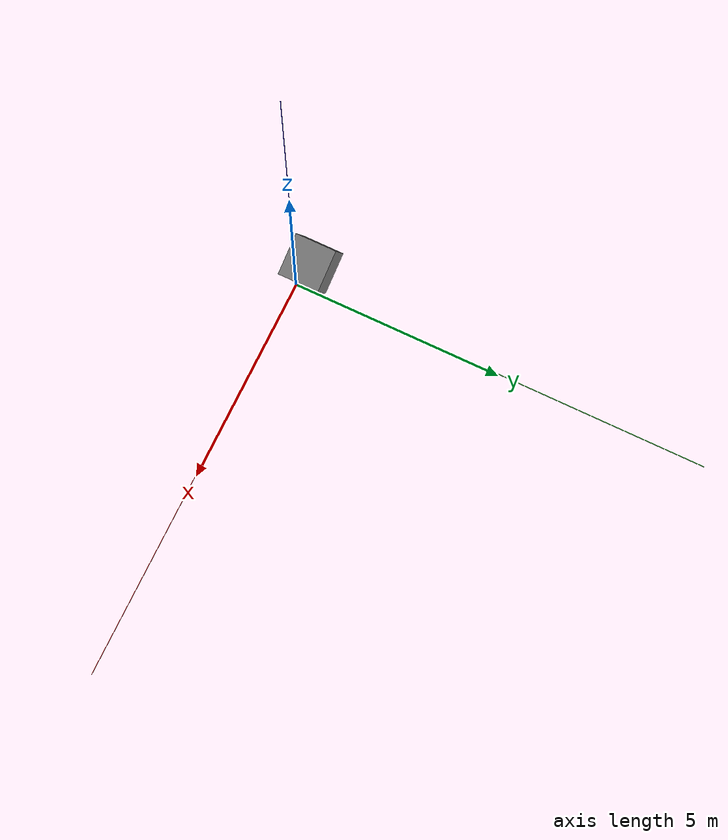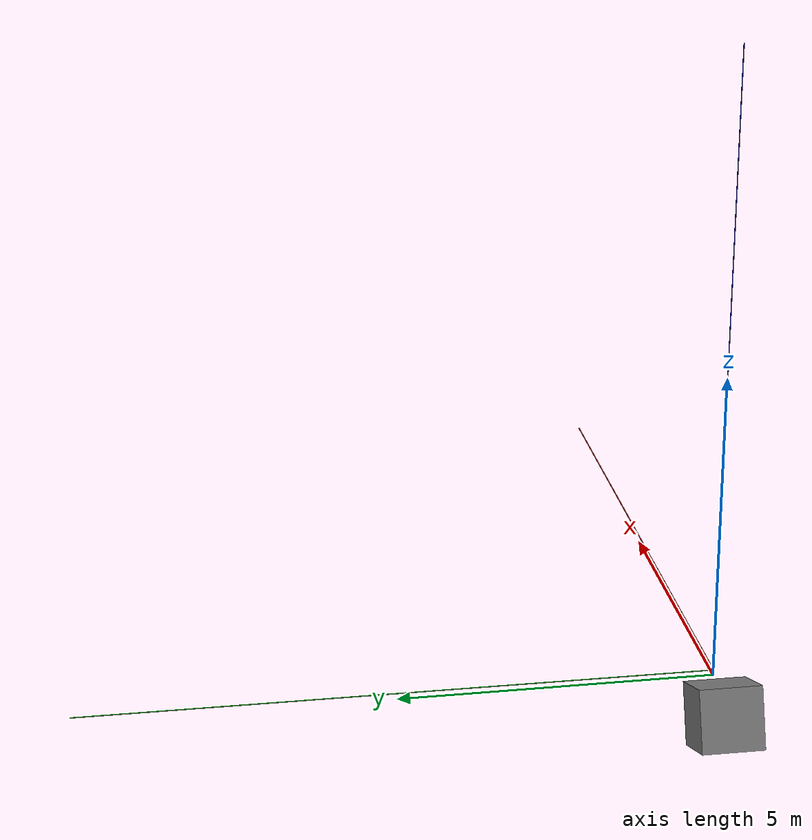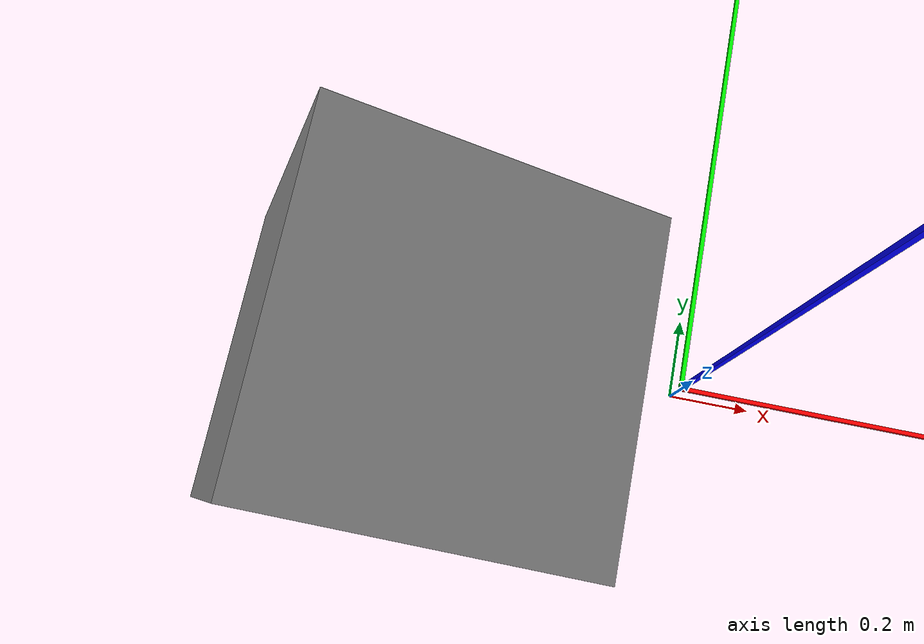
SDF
<sdf version="1.9">
 <world name="runway">
  <physics name="1ms" type="ignore">
   <max_step_size>0.001</max_step_size>
   <real_time_factor>1.0</real_time_factor>
  </physics>
  <plugin filename="gz-sim-physics-system" name="gz::sim::systems::Physics"/>
  <plugin filename="gz-sim-sensors-system" name="gz::sim::systems::Sensors">
   <render_engine>ogre2</render_engine>
  </plugin>
  <plugin filename="gz-sim-user-commands-system" name="gz::sim::systems::UserCommands"/>
  <plugin filename="gz-sim-scene-broadcaster-system" name="gz::sim::systems::SceneBroadcaster"/>
  <plugin filename="gz-sim-imu-system" name="gz::sim::systems::Imu"/>
  <scene><ambient>1.0 1.0 1.0</ambient><background>0.8 0.8 0.8</background></scene>
  <light type="directional" name="sun">
   <pose>0 0 10 0 0 0</pose>
   <diffuse>0.8 0.8 0.8 1</diffuse>
   <specular>0.8 0.8 0.8 1</specular>
   <attenuation>
    <range>1000</range>
    <constant>0.9</constant>
    <linear>0.01</linear>
    <quadratic>0.001</quadratic>
   </attenuation>
   <direction>-0.5 0.1 -0.9</direction>
  </light>
  <model name="axes">
   <static>1</static>
   <link name="link">
    <visual name="r">
     <pose>5 0 0.1 0 0 0</pose>
     <geometry><box><size>10 0.01 0.01</size></box></geometry>
     <material>
      <ambient>1 0 0 1</ambient>
      <diffuse>1 0 0 1</diffuse>
      <emissive>1 0 0 1</emissive>
      <specular>0.5 0.5 0.5 1</specular>
     </material>
    </visual>
    <visual name="g">
     <pose>0 5 0.1 0 0 0</pose>
     <geometry><box><size>0.01 10 0.01</size></box></geometry>
     <material>
      <ambient>0 1 0 1</ambient>
      <diffuse>0 1 0 1</diffuse>
      <emissive>0 1 0 1</emissive>
      <specular>0.5 0.5 0.5 1</specular>
     </material>
    </visual>
    <visual name="b">
     <pose>0 0 5.1 0 0 0</pose>
     <geometry><box><size>0.01 0.01 10</size></box></geometry>
     <material>
      <ambient>0 0 1 1</ambient>
      <diffuse>0 0 1 1</diffuse>
      <emissive>0 0 1 1</emissive>
      <specular>0.5 0.5 0.5 1</specular>
     </material>
    </visual>
   </link>
  </model>
  <model name="box">
   <static>true</static>
   <pose degrees="true">-0.7 0 -0.325 0 20 0</pose>
   <link name="base_link">
    <collision name="collision"><geometry><box><size>1 1 1</size></box></geometry></collision>
    <visual name="visual">
     <geometry><box><size>1 1 1</size></box></geometry>
     <material>
      <ambient>0.5 0.5 0.5 1</ambient>
      <diffuse>0.5 0.5 0.5 1</diffuse>
      <specular>0.5 0.5 0.5 1</specular>
     </material>
    </visual>
   </link>
  </model>
 </world>
</sdf>
